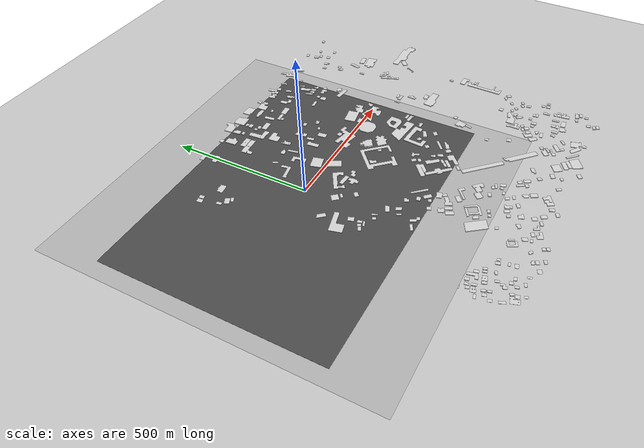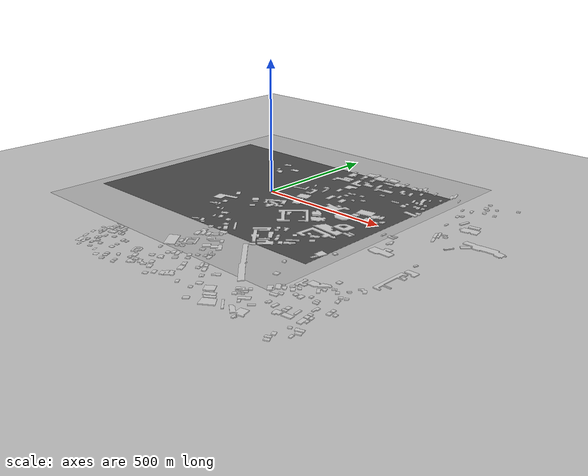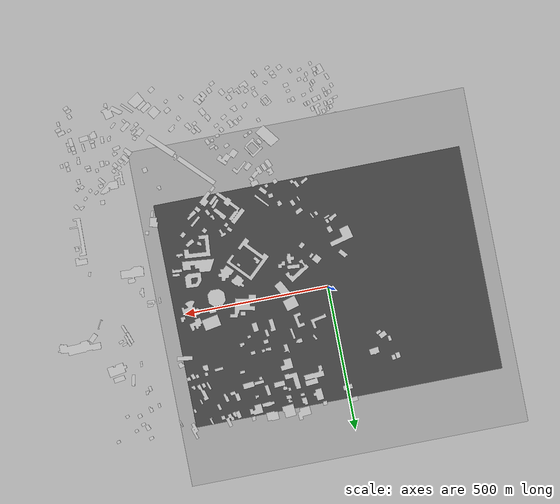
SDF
<?xml version="1.0" ?>
<sdf version="1.6">
  <world name="only_roads">
    <include>
      <uri>model://sun</uri>
    </include>
    <include>
      <uri>model://ground_plane</uri>
    </include>

    <!-- The Standalone Road Network -->
    <include>
      <name>road_network</name>
      <uri>model://college_road_network</uri>
      <pose>0 0 0.02 0 0 0</pose> <!-- Slightly above ground plane -->
    </include>

    <!-- The Standalone Buildings -->
    <include>
      <name>college_buildings</name>
      <uri>model://college_buildings</uri>
      <pose>229.35929870605469 -187.56932067871094 0 0 0 0</pose>
    </include>

    <!-- The Standalone Satellite Imagery -->
    <include>
      <name>college_satellite</name>
      <uri>model://college_satellite</uri>
      <pose>0 0 0.01 0 0 0</pose> <!-- Just below roads -->
    </include>

    <gui fullscreen='0'>
      <camera name='user_camera'>
        <pose>0 0 500 0 1.57 0</pose>
      </camera>
    </gui>

  </world>
</sdf>

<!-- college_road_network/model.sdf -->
<sdf version="1.6">
  <model name="college_road_network">
    <static>true</static>
    <link name="link">
      <visual name="visual">
        <geometry>
          <plane>
            <normal>0 0 1</normal>
            <size>1073.3833064493178 779.2364355528787</size>
          </plane>
        </geometry>
        <material>
          <script>
            <uri>model://college_road_network/materials/scripts</uri>
            <uri>model://college_road_network/materials/textures</uri>
            <name>RoadOverlay</name>
          </script>
        </material>
      </visual>
    </link>
  </model>
</sdf>

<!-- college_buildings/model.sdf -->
<sdf version="1.6">
  <model name="college_buildings">
    <static>true</static>
    <link name="link">
      <visual name="visual">
        <geometry>
          <mesh>
            <uri>model://college_buildings/meshes/buildings.dae</uri>
            <scale>1 1 1</scale>
          </mesh>
        </geometry>
        <material>
          <ambient>0.75 0.75 0.75 1</ambient>
          <diffuse>0.85 0.85 0.85 1</diffuse>
          <specular>0.05 0.05 0.05 1</specular>
          <emissive>0 0 0 1</emissive>
        </material>
      </visual>
      <collision name="collision">
        <geometry>
          <mesh>
            <uri>model://college_buildings/meshes/buildings.dae</uri>
            <scale>1 1 1</scale>
          </mesh>
        </geometry>
      </collision>
    </link>
  </model>
</sdf>

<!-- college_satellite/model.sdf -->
<sdf version="1.6">
  <model name="college_satellite">
    <static>false</static>
    <link name="link">
      <gravity>0</gravity> <!-- Prevent it from falling -->
      <visual name="visual">
        <cast_shadows>false</cast_shadows>
        <geometry>
          <box>
            <size>1179.56 1172.19 0.001</size>
          </box>
        </geometry>
        <material>
          <script>
            <uri>model://college_satellite/materials/scripts</uri>
            <uri>model://college_satellite/materials/textures</uri>
            <name>CollegeSatellite</name>
          </script>
        </material>
      </visual>
      <collision name="collision">
        <geometry>
          <box>
            <size>1179.56 1172.19 0.001</size>
          </box>
        </geometry>
      </collision>
    </link>
  </model>
</sdf>
